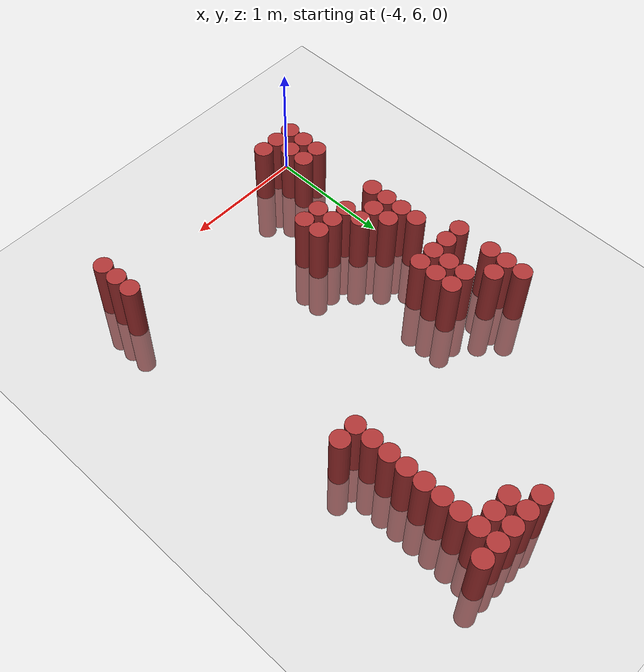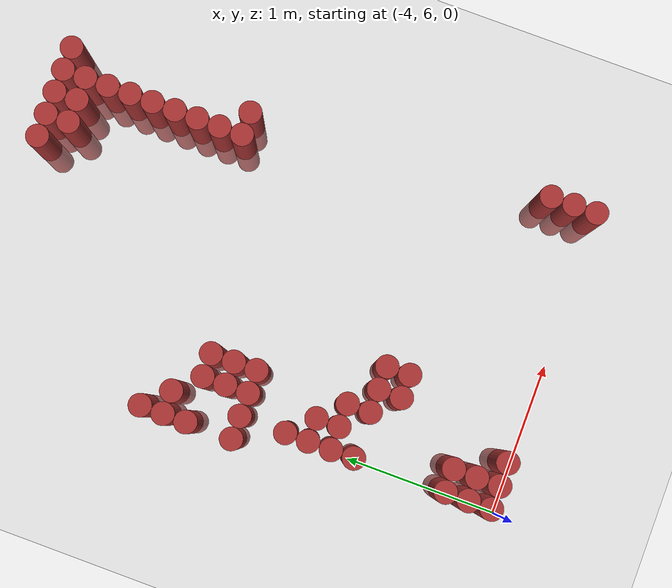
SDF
<sdf version="1.6">
 <world name="default">
  <model name="ground_plane">
   <static>1</static>
   <link name="link">
    <collision name="collision">
     <geometry><plane><normal>0 0 1</normal><size>100 100</size></plane></geometry>
     <surface><friction><ode><mu>100</mu><mu2>50</mu2></ode></friction></surface>
    </collision>
    <visual name="visual">
     <cast_shadows>0</cast_shadows>
     <geometry><plane><normal>0 0 1</normal><size>100 100</size></plane></geometry>
     <material>
      <script><uri>file://media/materials/scripts/gazebo.material</uri><name>Gazebo/Grey</name></script>
     </material>
    </visual>
   </link>
  </model>
  <model name="unit_cylinder_267">
   <static>1</static>
   <pose>-4.125000 7.725000 0.000000 0.000000 0.000000 0.000000</pose>
   <link name="link">
    <inertial>
     <mass>1</mass>
     <inertia><ixx>0.145833</ixx><ixy>0</ixy><ixz>0</ixz><iyy>0.145833</iyy><iyz>0</iyz><izz>0.125</izz></inertia>
    </inertial>
    <collision name="collision">
     <geometry><cylinder><radius>0.075000</radius><length>1</length></cylinder></geometry>
    </collision>
    <visual name="visual">
     <geometry><cylinder><radius>0.075000</radius><length>1</length></cylinder></geometry>
     <material>
      <ambient>0.648000 0.192000 0.192000 1</ambient>
      <diffuse>0.648000 0.192000 0.192000 1</diffuse>
     </material>
     <material>
      <script><name>Gazebo/Grey</name><uri>file://media/materials/scripts/gazebo.material</uri></script>
     </material>
    </visual>
   </link>
  </model>
  <model name="unit_cylinder_268">
   <static>1</static>
   <pose>-4.125000 8.025000 0.000000 0.000000 0.000000 0.000000</pose>
   <link name="link">
    <inertial>
     <mass>1</mass>
     <inertia><ixx>0.145833</ixx><ixy>0</ixy><ixz>0</ixz><iyy>0.145833</iyy><iyz>0</iyz><izz>0.125</izz></inertia>
    </inertial>
    <collision name="collision">
     <geometry><cylinder><radius>0.075000</radius><length>1</length></cylinder></geometry>
    </collision>
    <visual name="visual">
     <geometry><cylinder><radius>0.075000</radius><length>1</length></cylinder></geometry>
     <material>
      <ambient>0.648000 0.192000 0.192000 1</ambient>
      <diffuse>0.648000 0.192000 0.192000 1</diffuse>
     </material>
     <material>
      <script><name>Gazebo/Grey</name><uri>file://media/materials/scripts/gazebo.material</uri></script>
     </material>
    </visual>
   </link>
  </model>
  <model name="unit_cylinder_269">
   <static>1</static>
   <pose>-4.125000 8.175000 0.000000 0.000000 0.000000 0.000000</pose>
   <link name="link">
    <inertial>
     <mass>1</mass>
     <inertia><ixx>0.145833</ixx><ixy>0</ixy><ixz>0</ixz><iyy>0.145833</iyy><iyz>0</iyz><izz>0.125</izz></inertia>
    </inertial>
    <collision name="collision">
     <geometry><cylinder><radius>0.075000</radius><length>1</length></cylinder></geometry>
    </collision>
    <visual name="visual">
     <geometry><cylinder><radius>0.075000</radius><length>1</length></cylinder></geometry>
     <material>
      <ambient>0.648000 0.192000 0.192000 1</ambient>
      <diffuse>0.648000 0.192000 0.192000 1</diffuse>
     </material>
     <material>
      <script><name>Gazebo/Grey</name><uri>file://media/materials/scripts/gazebo.material</uri></script>
     </material>
    </visual>
   </link>
  </model>
  <model name="unit_cylinder_270">
   <static>1</static>
   <pose>-4.125000 8.325000 0.000000 0.000000 0.000000 0.000000</pose>
   <link name="link">
    <inertial>
     <mass>1</mass>
     <inertia><ixx>0.145833</ixx><ixy>0</ixy><ixz>0</ixz><iyy>0.145833</iyy><iyz>0</iyz><izz>0.125</izz></inertia>
    </inertial>
    <collision name="collision">
     <geometry><cylinder><radius>0.075000</radius><length>1</length></cylinder></geometry>
    </collision>
    <visual name="visual">
     <geometry><cylinder><radius>0.075000</radius><length>1</length></cylinder></geometry>
     <material>
      <ambient>0.648000 0.192000 0.192000 1</ambient>
      <diffuse>0.648000 0.192000 0.192000 1</diffuse>
     </material>
     <material>
      <script><name>Gazebo/Grey</name><uri>file://media/materials/scripts/gazebo.material</uri></script>
     </material>
    </visual>
   </link>
  </model>
  <model name="unit_cylinder_275">
   <static>1</static>
   <pose>-3.975000 6.075000 0.000000 0.000000 0.000000 0.000000</pose>
   <link name="link">
    <inertial>
     <mass>1</mass>
     <inertia><ixx>0.145833</ixx><ixy>0</ixy><ixz>0</ixz><iyy>0.145833</iyy><iyz>0</iyz><izz>0.125</izz></inertia>
    </inertial>
    <collision name="collision">
     <geometry><cylinder><radius>0.075000</radius><length>1</length></cylinder></geometry>
    </collision>
    <visual name="visual">
     <geometry><cylinder><radius>0.075000</radius><length>1</length></cylinder></geometry>
     <material>
      <ambient>0.648000 0.192000 0.192000 1</ambient>
      <diffuse>0.648000 0.192000 0.192000 1</diffuse>
     </material>
     <material>
      <script><name>Gazebo/Grey</name><uri>file://media/materials/scripts/gazebo.material</uri></script>
     </material>
    </visual>
   </link>
  </model>
  <model name="unit_cylinder_276">
   <static>1</static>
   <pose>-3.975000 6.225000 0.000000 0.000000 0.000000 0.000000</pose>
   <link name="link">
    <inertial>
     <mass>1</mass>
     <inertia><ixx>0.145833</ixx><ixy>0</ixy><ixz>0</ixz><iyy>0.145833</iyy><iyz>0</iyz><izz>0.125</izz></inertia>
    </inertial>
    <collision name="collision">
     <geometry><cylinder><radius>0.075000</radius><length>1</length></cylinder></geometry>
    </collision>
    <visual name="visual">
     <geometry><cylinder><radius>0.075000</radius><length>1</length></cylinder></geometry>
     <material>
      <ambient>0.648000 0.192000 0.192000 1</ambient>
      <diffuse>0.648000 0.192000 0.192000 1</diffuse>
     </material>
     <material>
      <script><name>Gazebo/Grey</name><uri>file://media/materials/scripts/gazebo.material</uri></script>
     </material>
    </visual>
   </link>
  </model>
  <model name="unit_cylinder_277">
   <static>1</static>
   <pose>-3.975000 6.375000 0.000000 0.000000 0.000000 0.000000</pose>
   <link name="link">
    <inertial>
     <mass>1</mass>
     <inertia><ixx>0.145833</ixx><ixy>0</ixy><ixz>0</ixz><iyy>0.145833</iyy><iyz>0</iyz><izz>0.125</izz></inertia>
    </inertial>
    <collision name="collision">
     <geometry><cylinder><radius>0.075000</radius><length>1</length></cylinder></geometry>
    </collision>
    <visual name="visual">
     <geometry><cylinder><radius>0.075000</radius><length>1</length></cylinder></geometry>
     <material>
      <ambient>0.648000 0.192000 0.192000 1</ambient>
      <diffuse>0.648000 0.192000 0.192000 1</diffuse>
     </material>
     <material>
      <script><name>Gazebo/Grey</name><uri>file://media/materials/scripts/gazebo.material</uri></script>
     </material>
    </visual>
   </link>
  </model>
  <model name="unit_cylinder_278">
   <static>1</static>
   <pose>-3.975000 6.975000 0.000000 0.000000 0.000000 0.000000</pose>
   <link name="link">
    <inertial>
     <mass>1</mass>
     <inertia><ixx>0.145833</ixx><ixy>0</ixy><ixz>0</ixz><iyy>0.145833</iyy><iyz>0</iyz><izz>0.125</izz></inertia>
    </inertial>
    <collision name="collision">
     <geometry><cylinder><radius>0.075000</radius><length>1</length></cylinder></geometry>
    </collision>
    <visual name="visual">
     <geometry><cylinder><radius>0.075000</radius><length>1</length></cylinder></geometry>
     <material>
      <ambient>0.648000 0.192000 0.192000 1</ambient>
      <diffuse>0.648000 0.192000 0.192000 1</diffuse>
     </material>
     <material>
      <script><name>Gazebo/Grey</name><uri>file://media/materials/scripts/gazebo.material</uri></script>
     </material>
    </visual>
   </link>
  </model>
  <model name="unit_cylinder_279">
   <static>1</static>
   <pose>-3.975000 7.125000 0.000000 0.000000 0.000000 0.000000</pose>
   <link name="link">
    <inertial>
     <mass>1</mass>
     <inertia><ixx>0.145833</ixx><ixy>0</ixy><ixz>0</ixz><iyy>0.145833</iyy><iyz>0</iyz><izz>0.125</izz></inertia>
    </inertial>
    <collision name="collision">
     <geometry><cylinder><radius>0.075000</radius><length>1</length></cylinder></geometry>
    </collision>
    <visual name="visual">
     <geometry><cylinder><radius>0.075000</radius><length>1</length></cylinder></geometry>
     <material>
      <ambient>0.648000 0.192000 0.192000 1</ambient>
      <diffuse>0.648000 0.192000 0.192000 1</diffuse>
     </material>
     <material>
      <script><name>Gazebo/Grey</name><uri>file://media/materials/scripts/gazebo.material</uri></script>
     </material>
    </visual>
   </link>
  </model>
  <model name="unit_cylinder_280">
   <static>1</static>
   <pose>-3.975000 7.275000 0.000000 0.000000 0.000000 0.000000</pose>
   <link name="link">
    <inertial>
     <mass>1</mass>
     <inertia><ixx>0.145833</ixx><ixy>0</ixy><ixz>0</ixz><iyy>0.145833</iyy><iyz>0</iyz><izz>0.125</izz></inertia>
    </inertial>
    <collision name="collision">
     <geometry><cylinder><radius>0.075000</radius><length>1</length></cylinder></geometry>
    </collision>
    <visual name="visual">
     <geometry><cylinder><radius>0.075000</radius><length>1</length></cylinder></geometry>
     <material>
      <ambient>0.648000 0.192000 0.192000 1</ambient>
      <diffuse>0.648000 0.192000 0.192000 1</diffuse>
     </material>
     <material>
      <script><name>Gazebo/Grey</name><uri>file://media/materials/scripts/gazebo.material</uri></script>
     </material>
    </visual>
   </link>
  </model>
  <model name="unit_cylinder_281">
   <static>1</static>
   <pose>-3.975000 7.425000 0.000000 0.000000 0.000000 0.000000</pose>
   <link name="link">
    <inertial>
     <mass>1</mass>
     <inertia><ixx>0.145833</ixx><ixy>0</ixy><ixz>0</ixz><iyy>0.145833</iyy><iyz>0</iyz><izz>0.125</izz></inertia>
    </inertial>
    <collision name="collision">
     <geometry><cylinder><radius>0.075000</radius><length>1</length></cylinder></geometry>
    </collision>
    <visual name="visual">
     <geometry><cylinder><radius>0.075000</radius><length>1</length></cylinder></geometry>
     <material>
      <ambient>0.648000 0.192000 0.192000 1</ambient>
      <diffuse>0.648000 0.192000 0.192000 1</diffuse>
     </material>
     <material>
      <script><name>Gazebo/Grey</name><uri>file://media/materials/scripts/gazebo.material</uri></script>
     </material>
    </visual>
   </link>
  </model>
  <model name="unit_cylinder_282">
   <static>1</static>
   <pose>-3.975000 7.725000 0.000000 0.000000 0.000000 0.000000</pose>
   <link name="link">
    <inertial>
     <mass>1</mass>
     <inertia><ixx>0.145833</ixx><ixy>0</ixy><ixz>0</ixz><iyy>0.145833</iyy><iyz>0</iyz><izz>0.125</izz></inertia>
    </inertial>
    <collision name="collision">
     <geometry><cylinder><radius>0.075000</radius><length>1</length></cylinder></geometry>
    </collision>
    <visual name="visual">
     <geometry><cylinder><radius>0.075000</radius><length>1</length></cylinder></geometry>
     <material>
      <ambient>0.648000 0.192000 0.192000 1</ambient>
      <diffuse>0.648000 0.192000 0.192000 1</diffuse>
     </material>
     <material>
      <script><name>Gazebo/Grey</name><uri>file://media/materials/scripts/gazebo.material</uri></script>
     </material>
    </visual>
   </link>
  </model>
  <model name="unit_cylinder_283">
   <static>1</static>
   <pose>-3.975000 8.175000 0.000000 0.000000 0.000000 0.000000</pose>
   <link name="link">
    <inertial>
     <mass>1</mass>
     <inertia><ixx>0.145833</ixx><ixy>0</ixy><ixz>0</ixz><iyy>0.145833</iyy><iyz>0</iyz><izz>0.125</izz></inertia>
    </inertial>
    <collision name="collision">
     <geometry><cylinder><radius>0.075000</radius><length>1</length></cylinder></geometry>
    </collision>
    <visual name="visual">
     <geometry><cylinder><radius>0.075000</radius><length>1</length></cylinder></geometry>
     <material>
      <ambient>0.648000 0.192000 0.192000 1</ambient>
      <diffuse>0.648000 0.192000 0.192000 1</diffuse>
     </material>
     <material>
      <script><name>Gazebo/Grey</name><uri>file://media/materials/scripts/gazebo.material</uri></script>
     </material>
    </visual>
   </link>
  </model>
  <model name="unit_cylinder_285">
   <static>1</static>
   <pose>-3.825000 6.075000 0.000000 0.000000 0.000000 0.000000</pose>
   <link name="link">
    <inertial>
     <mass>1</mass>
     <inertia><ixx>0.145833</ixx><ixy>0</ixy><ixz>0</ixz><iyy>0.145833</iyy><iyz>0</iyz><izz>0.125</izz></inertia>
    </inertial>
    <collision name="collision">
     <geometry><cylinder><radius>0.075000</radius><length>1</length></cylinder></geometry>
    </collision>
    <visual name="visual">
     <geometry><cylinder><radius>0.075000</radius><length>1</length></cylinder></geometry>
     <material>
      <ambient>0.648000 0.192000 0.192000 1</ambient>
      <diffuse>0.648000 0.192000 0.192000 1</diffuse>
     </material>
     <material>
      <script><name>Gazebo/Grey</name><uri>file://media/materials/scripts/gazebo.material</uri></script>
     </material>
    </visual>
   </link>
  </model>
  <model name="unit_cylinder_286">
   <static>1</static>
   <pose>-3.825000 6.225000 0.000000 0.000000 0.000000 0.000000</pose>
   <link name="link">
    <inertial>
     <mass>1</mass>
     <inertia><ixx>0.145833</ixx><ixy>0</ixy><ixz>0</ixz><iyy>0.145833</iyy><iyz>0</iyz><izz>0.125</izz></inertia>
    </inertial>
    <collision name="collision">
     <geometry><cylinder><radius>0.075000</radius><length>1</length></cylinder></geometry>
    </collision>
    <visual name="visual">
     <geometry><cylinder><radius>0.075000</radius><length>1</length></cylinder></geometry>
     <material>
      <ambient>0.648000 0.192000 0.192000 1</ambient>
      <diffuse>0.648000 0.192000 0.192000 1</diffuse>
     </material>
     <material>
      <script><name>Gazebo/Grey</name><uri>file://media/materials/scripts/gazebo.material</uri></script>
     </material>
    </visual>
   </link>
  </model>
  <model name="unit_cylinder_287">
   <static>1</static>
   <pose>-3.825000 6.375000 0.000000 0.000000 0.000000 0.000000</pose>
   <link name="link">
    <inertial>
     <mass>1</mass>
     <inertia><ixx>0.145833</ixx><ixy>0</ixy><ixz>0</ixz><iyy>0.145833</iyy><iyz>0</iyz><izz>0.125</izz></inertia>
    </inertial>
    <collision name="collision">
     <geometry><cylinder><radius>0.075000</radius><length>1</length></cylinder></geometry>
    </collision>
    <visual name="visual">
     <geometry><cylinder><radius>0.075000</radius><length>1</length></cylinder></geometry>
     <material>
      <ambient>0.648000 0.192000 0.192000 1</ambient>
      <diffuse>0.648000 0.192000 0.192000 1</diffuse>
     </material>
     <material>
      <script><name>Gazebo/Grey</name><uri>file://media/materials/scripts/gazebo.material</uri></script>
     </material>
    </visual>
   </link>
  </model>
  <model name="unit_cylinder_288">
   <static>1</static>
   <pose>-3.825000 7.125000 0.000000 0.000000 0.000000 0.000000</pose>
   <link name="link">
    <inertial>
     <mass>1</mass>
     <inertia><ixx>0.145833</ixx><ixy>0</ixy><ixz>0</ixz><iyy>0.145833</iyy><iyz>0</iyz><izz>0.125</izz></inertia>
    </inertial>
    <collision name="collision">
     <geometry><cylinder><radius>0.075000</radius><length>1</length></cylinder></geometry>
    </collision>
    <visual name="visual">
     <geometry><cylinder><radius>0.075000</radius><length>1</length></cylinder></geometry>
     <material>
      <ambient>0.648000 0.192000 0.192000 1</ambient>
      <diffuse>0.648000 0.192000 0.192000 1</diffuse>
     </material>
     <material>
      <script><name>Gazebo/Grey</name><uri>file://media/materials/scripts/gazebo.material</uri></script>
     </material>
    </visual>
   </link>
  </model>
  <model name="unit_cylinder_289">
   <static>1</static>
   <pose>-3.825000 7.275000 0.000000 0.000000 0.000000 0.000000</pose>
   <link name="link">
    <inertial>
     <mass>1</mass>
     <inertia><ixx>0.145833</ixx><ixy>0</ixy><ixz>0</ixz><iyy>0.145833</iyy><iyz>0</iyz><izz>0.125</izz></inertia>
    </inertial>
    <collision name="collision">
     <geometry><cylinder><radius>0.075000</radius><length>1</length></cylinder></geometry>
    </collision>
    <visual name="visual">
     <geometry><cylinder><radius>0.075000</radius><length>1</length></cylinder></geometry>
     <material>
      <ambient>0.648000 0.192000 0.192000 1</ambient>
      <diffuse>0.648000 0.192000 0.192000 1</diffuse>
     </material>
     <material>
      <script><name>Gazebo/Grey</name><uri>file://media/materials/scripts/gazebo.material</uri></script>
     </material>
    </visual>
   </link>
  </model>
  <model name="unit_cylinder_290">
   <static>1</static>
   <pose>-3.825000 7.725000 0.000000 0.000000 0.000000 0.000000</pose>
   <link name="link">
    <inertial>
     <mass>1</mass>
     <inertia><ixx>0.145833</ixx><ixy>0</ixy><ixz>0</ixz><iyy>0.145833</iyy><iyz>0</iyz><izz>0.125</izz></inertia>
    </inertial>
    <collision name="collision">
     <geometry><cylinder><radius>0.075000</radius><length>1</length></cylinder></geometry>
    </collision>
    <visual name="visual">
     <geometry><cylinder><radius>0.075000</radius><length>1</length></cylinder></geometry>
     <material>
      <ambient>0.648000 0.192000 0.192000 1</ambient>
      <diffuse>0.648000 0.192000 0.192000 1</diffuse>
     </material>
     <material>
      <script><name>Gazebo/Grey</name><uri>file://media/materials/scripts/gazebo.material</uri></script>
     </material>
    </visual>
   </link>
  </model>
  <model name="unit_cylinder_291">
   <static>1</static>
   <pose>-3.825000 7.875000 0.000000 0.000000 0.000000 0.000000</pose>
   <link name="link">
    <inertial>
     <mass>1</mass>
     <inertia><ixx>0.145833</ixx><ixy>0</ixy><ixz>0</ixz><iyy>0.145833</iyy><iyz>0</iyz><izz>0.125</izz></inertia>
    </inertial>
    <collision name="collision">
     <geometry><cylinder><radius>0.075000</radius><length>1</length></cylinder></geometry>
    </collision>
    <visual name="visual">
     <geometry><cylinder><radius>0.075000</radius><length>1</length></cylinder></geometry>
     <material>
      <ambient>0.648000 0.192000 0.192000 1</ambient>
      <diffuse>0.648000 0.192000 0.192000 1</diffuse>
     </material>
     <material>
      <script><name>Gazebo/Grey</name><uri>file://media/materials/scripts/gazebo.material</uri></script>
     </material>
    </visual>
   </link>
  </model>
  <model name="unit_cylinder_292">
   <static>1</static>
   <pose>-3.825000 8.025000 0.000000 0.000000 0.000000 0.000000</pose>
   <link name="link">
    <inertial>
     <mass>1</mass>
     <inertia><ixx>0.145833</ixx><ixy>0</ixy><ixz>0</ixz><iyy>0.145833</iyy><iyz>0</iyz><izz>0.125</izz></inertia>
    </inertial>
    <collision name="collision">
     <geometry><cylinder><radius>0.075000</radius><length>1</length></cylinder></geometry>
    </collision>
    <visual name="visual">
     <geometry><cylinder><radius>0.075000</radius><length>1</length></cylinder></geometry>
     <material>
      <ambient>0.648000 0.192000 0.192000 1</ambient>
      <diffuse>0.648000 0.192000 0.192000 1</diffuse>
     </material>
     <material>
      <script><name>Gazebo/Grey</name><uri>file://media/materials/scripts/gazebo.material</uri></script>
     </material>
    </visual>
   </link>
  </model>
  <model name="unit_cylinder_294">
   <static>1</static>
   <pose>-3.675000 6.075000 0.000000 0.000000 0.000000 0.000000</pose>
   <link name="link">
    <inertial>
     <mass>1</mass>
     <inertia><ixx>0.145833</ixx><ixy>0</ixy><ixz>0</ixz><iyy>0.145833</iyy><iyz>0</iyz><izz>0.125</izz></inertia>
    </inertial>
    <collision name="collision">
     <geometry><cylinder><radius>0.075000</radius><length>1</length></cylinder></geometry>
    </collision>
    <visual name="visual">
     <geometry><cylinder><radius>0.075000</radius><length>1</length></cylinder></geometry>
     <material>
      <ambient>0.648000 0.192000 0.192000 1</ambient>
      <diffuse>0.648000 0.192000 0.192000 1</diffuse>
     </material>
     <material>
      <script><name>Gazebo/Grey</name><uri>file://media/materials/scripts/gazebo.material</uri></script>
     </material>
    </visual>
   </link>
  </model>
  <model name="unit_cylinder_295">
   <static>1</static>
   <pose>-3.675000 6.975000 0.000000 0.000000 0.000000 0.000000</pose>
   <link name="link">
    <inertial>
     <mass>1</mass>
     <inertia><ixx>0.145833</ixx><ixy>0</ixy><ixz>0</ixz><iyy>0.145833</iyy><iyz>0</iyz><izz>0.125</izz></inertia>
    </inertial>
    <collision name="collision">
     <geometry><cylinder><radius>0.075000</radius><length>1</length></cylinder></geometry>
    </collision>
    <visual name="visual">
     <geometry><cylinder><radius>0.075000</radius><length>1</length></cylinder></geometry>
     <material>
      <ambient>0.648000 0.192000 0.192000 1</ambient>
      <diffuse>0.648000 0.192000 0.192000 1</diffuse>
     </material>
     <material>
      <script><name>Gazebo/Grey</name><uri>file://media/materials/scripts/gazebo.material</uri></script>
     </material>
    </visual>
   </link>
  </model>
  <model name="unit_cylinder_296">
   <static>1</static>
   <pose>-3.675000 7.125000 0.000000 0.000000 0.000000 0.000000</pose>
   <link name="link">
    <inertial>
     <mass>1</mass>
     <inertia><ixx>0.145833</ixx><ixy>0</ixy><ixz>0</ixz><iyy>0.145833</iyy><iyz>0</iyz><izz>0.125</izz></inertia>
    </inertial>
    <collision name="collision">
     <geometry><cylinder><radius>0.075000</radius><length>1</length></cylinder></geometry>
    </collision>
    <visual name="visual">
     <geometry><cylinder><radius>0.075000</radius><length>1</length></cylinder></geometry>
     <material>
      <ambient>0.648000 0.192000 0.192000 1</ambient>
      <diffuse>0.648000 0.192000 0.192000 1</diffuse>
     </material>
     <material>
      <script><name>Gazebo/Grey</name><uri>file://media/materials/scripts/gazebo.material</uri></script>
     </material>
    </visual>
   </link>
  </model>
  <model name="unit_cylinder_297">
   <static>1</static>
   <pose>-3.675000 7.725000 0.000000 0.000000 0.000000 0.000000</pose>
   <link name="link">
    <inertial>
     <mass>1</mass>
     <inertia><ixx>0.145833</ixx><ixy>0</ixy><ixz>0</ixz><iyy>0.145833</iyy><iyz>0</iyz><izz>0.125</izz></inertia>
    </inertial>
    <collision name="collision">
     <geometry><cylinder><radius>0.075000</radius><length>1</length></cylinder></geometry>
    </collision>
    <visual name="visual">
     <geometry><cylinder><radius>0.075000</radius><length>1</length></cylinder></geometry>
     <material>
      <ambient>0.648000 0.192000 0.192000 1</ambient>
      <diffuse>0.648000 0.192000 0.192000 1</diffuse>
     </material>
     <material>
      <script><name>Gazebo/Grey</name><uri>file://media/materials/scripts/gazebo.material</uri></script>
     </material>
    </visual>
   </link>
  </model>
  <model name="unit_cylinder_298">
   <static>1</static>
   <pose>-3.675000 7.875000 0.000000 0.000000 0.000000 0.000000</pose>
   <link name="link">
    <inertial>
     <mass>1</mass>
     <inertia><ixx>0.145833</ixx><ixy>0</ixy><ixz>0</ixz><iyy>0.145833</iyy><iyz>0</iyz><izz>0.125</izz></inertia>
    </inertial>
    <collision name="collision">
     <geometry><cylinder><radius>0.075000</radius><length>1</length></cylinder></geometry>
    </collision>
    <visual name="visual">
     <geometry><cylinder><radius>0.075000</radius><length>1</length></cylinder></geometry>
     <material>
      <ambient>0.648000 0.192000 0.192000 1</ambient>
      <diffuse>0.648000 0.192000 0.192000 1</diffuse>
     </material>
     <material>
      <script><name>Gazebo/Grey</name><uri>file://media/materials/scripts/gazebo.material</uri></script>
     </material>
    </visual>
   </link>
  </model>
  <model name="unit_cylinder_299">
   <static>1</static>
   <pose>-3.675000 8.025000 0.000000 0.000000 0.000000 0.000000</pose>
   <link name="link">
    <inertial>
     <mass>1</mass>
     <inertia><ixx>0.145833</ixx><ixy>0</ixy><ixz>0</ixz><iyy>0.145833</iyy><iyz>0</iyz><izz>0.125</izz></inertia>
    </inertial>
    <collision name="collision">
     <geometry><cylinder><radius>0.075000</radius><length>1</length></cylinder></geometry>
    </collision>
    <visual name="visual">
     <geometry><cylinder><radius>0.075000</radius><length>1</length></cylinder></geometry>
     <material>
      <ambient>0.648000 0.192000 0.192000 1</ambient>
      <diffuse>0.648000 0.192000 0.192000 1</diffuse>
     </material>
     <material>
      <script><name>Gazebo/Grey</name><uri>file://media/materials/scripts/gazebo.material</uri></script>
     </material>
    </visual>
   </link>
  </model>
  <model name="unit_cylinder_300">
   <static>1</static>
   <pose>-3.525000 6.825000 0.000000 0.000000 0.000000 0.000000</pose>
   <link name="link">
    <inertial>
     <mass>1</mass>
     <inertia><ixx>0.145833</ixx><ixy>0</ixy><ixz>0</ixz><iyy>0.145833</iyy><iyz>0</iyz><izz>0.125</izz></inertia>
    </inertial>
    <collision name="collision">
     <geometry><cylinder><radius>0.075000</radius><length>1</length></cylinder></geometry>
    </collision>
    <visual name="visual">
     <geometry><cylinder><radius>0.075000</radius><length>1</length></cylinder></geometry>
     <material>
      <ambient>0.648000 0.192000 0.192000 1</ambient>
      <diffuse>0.648000 0.192000 0.192000 1</diffuse>
     </material>
     <material>
      <script><name>Gazebo/Grey</name><uri>file://media/materials/scripts/gazebo.material</uri></script>
     </material>
    </visual>
   </link>
  </model>
  <model name="unit_cylinder_301">
   <static>1</static>
   <pose>-3.525000 6.975000 0.000000 0.000000 0.000000 0.000000</pose>
   <link name="link">
    <inertial>
     <mass>1</mass>
     <inertia><ixx>0.145833</ixx><ixy>0</ixy><ixz>0</ixz><iyy>0.145833</iyy><iyz>0</iyz><izz>0.125</izz></inertia>
    </inertial>
    <collision name="collision">
     <geometry><cylinder><radius>0.075000</radius><length>1</length></cylinder></geometry>
    </collision>
    <visual name="visual">
     <geometry><cylinder><radius>0.075000</radius><length>1</length></cylinder></geometry>
     <material>
      <ambient>0.648000 0.192000 0.192000 1</ambient>
      <diffuse>0.648000 0.192000 0.192000 1</diffuse>
     </material>
     <material>
      <script><name>Gazebo/Grey</name><uri>file://media/materials/scripts/gazebo.material</uri></script>
     </material>
    </visual>
   </link>
  </model>
  <model name="unit_cylinder_302">
   <static>1</static>
   <pose>-3.375000 6.825000 0.000000 0.000000 0.000000 0.000000</pose>
   <link name="link">
    <inertial>
     <mass>1</mass>
     <inertia><ixx>0.145833</ixx><ixy>0</ixy><ixz>0</ixz><iyy>0.145833</iyy><iyz>0</iyz><izz>0.125</izz></inertia>
    </inertial>
    <collision name="collision">
     <geometry><cylinder><radius>0.075000</radius><length>1</length></cylinder></geometry>
    </collision>
    <visual name="visual">
     <geometry><cylinder><radius>0.075000</radius><length>1</length></cylinder></geometry>
     <material>
      <ambient>0.648000 0.192000 0.192000 1</ambient>
      <diffuse>0.648000 0.192000 0.192000 1</diffuse>
     </material>
     <material>
      <script><name>Gazebo/Grey</name><uri>file://media/materials/scripts/gazebo.material</uri></script>
     </material>
    </visual>
   </link>
  </model>
  <model name="unit_cylinder_303">
   <static>1</static>
   <pose>-3.375000 6.975000 0.000000 0.000000 0.000000 0.000000</pose>
   <link name="link">
    <inertial>
     <mass>1</mass>
     <inertia><ixx>0.145833</ixx><ixy>0</ixy><ixz>0</ixz><iyy>0.145833</iyy><iyz>0</iyz><izz>0.125</izz></inertia>
    </inertial>
    <collision name="collision">
     <geometry><cylinder><radius>0.075000</radius><length>1</length></cylinder></geometry>
    </collision>
    <visual name="visual">
     <geometry><cylinder><radius>0.075000</radius><length>1</length></cylinder></geometry>
     <material>
      <ambient>0.648000 0.192000 0.192000 1</ambient>
      <diffuse>0.648000 0.192000 0.192000 1</diffuse>
     </material>
     <material>
      <script><name>Gazebo/Grey</name><uri>file://media/materials/scripts/gazebo.material</uri></script>
     </material>
    </visual>
   </link>
  </model>
  <model name="unit_cylinder_304">
   <static>1</static>
   <pose>-2.775000 9.525000 0.000000 0.000000 0.000000 0.000000</pose>
   <link name="link">
    <inertial>
     <mass>1</mass>
     <inertia><ixx>0.145833</ixx><ixy>0</ixy><ixz>0</ixz><iyy>0.145833</iyy><iyz>0</iyz><izz>0.125</izz></inertia>
    </inertial>
    <collision name="collision">
     <geometry><cylinder><radius>0.075000</radius><length>1</length></cylinder></geometry>
    </collision>
    <visual name="visual">
     <geometry><cylinder><radius>0.075000</radius><length>1</length></cylinder></geometry>
     <material>
      <ambient>0.648000 0.192000 0.192000 1</ambient>
      <diffuse>0.648000 0.192000 0.192000 1</diffuse>
     </material>
     <material>
      <script><name>Gazebo/Grey</name><uri>file://media/materials/scripts/gazebo.material</uri></script>
     </material>
    </visual>
   </link>
  </model>
  <model name="unit_cylinder_305">
   <static>1</static>
   <pose>-2.625000 9.375000 0.000000 0.000000 0.000000 0.000000</pose>
   <link name="link">
    <inertial>
     <mass>1</mass>
     <inertia><ixx>0.145833</ixx><ixy>0</ixy><ixz>0</ixz><iyy>0.145833</iyy><iyz>0</iyz><izz>0.125</izz></inertia>
    </inertial>
    <collision name="collision">
     <geometry><cylinder><radius>0.075000</radius><length>1</length></cylinder></geometry>
    </collision>
    <visual name="visual">
     <geometry><cylinder><radius>0.075000</radius><length>1</length></cylinder></geometry>
     <material>
      <ambient>0.648000 0.192000 0.192000 1</ambient>
      <diffuse>0.648000 0.192000 0.192000 1</diffuse>
     </material>
     <material>
      <script><name>Gazebo/Grey</name><uri>file://media/materials/scripts/gazebo.material</uri></script>
     </material>
    </visual>
   </link>
  </model>
  <model name="unit_cylinder_306">
   <static>1</static>
   <pose>-2.625000 9.525000 0.000000 0.000000 0.000000 0.000000</pose>
   <link name="link">
    <inertial>
     <mass>1</mass>
     <inertia><ixx>0.145833</ixx><ixy>0</ixy><ixz>0</ixz><iyy>0.145833</iyy><iyz>0</iyz><izz>0.125</izz></inertia>
    </inertial>
    <collision name="collision">
     <geometry><cylinder><radius>0.075000</radius><length>1</length></cylinder></geometry>
    </collision>
    <visual name="visual">
     <geometry><cylinder><radius>0.075000</radius><length>1</length></cylinder></geometry>
     <material>
      <ambient>0.648000 0.192000 0.192000 1</ambient>
      <diffuse>0.648000 0.192000 0.192000 1</diffuse>
     </material>
     <material>
      <script><name>Gazebo/Grey</name><uri>file://media/materials/scripts/gazebo.material</uri></script>
     </material>
    </visual>
   </link>
  </model>
  <model name="unit_cylinder_307">
   <static>1</static>
   <pose>-2.475000 9.375000 0.000000 0.000000 0.000000 0.000000</pose>
   <link name="link">
    <inertial>
     <mass>1</mass>
     <inertia><ixx>0.145833</ixx><ixy>0</ixy><ixz>0</ixz><iyy>0.145833</iyy><iyz>0</iyz><izz>0.125</izz></inertia>
    </inertial>
    <collision name="collision">
     <geometry><cylinder><radius>0.075000</radius><length>1</length></cylinder></geometry>
    </collision>
    <visual name="visual">
     <geometry><cylinder><radius>0.075000</radius><length>1</length></cylinder></geometry>
     <material>
      <ambient>0.648000 0.192000 0.192000 1</ambient>
      <diffuse>0.648000 0.192000 0.192000 1</diffuse>
     </material>
     <material>
      <script><name>Gazebo/Grey</name><uri>file://media/materials/scripts/gazebo.material</uri></script>
     </material>
    </visual>
   </link>
  </model>
  <model name="unit_cylinder_308">
   <static>1</static>
   <pose>-2.475000 9.525000 0.000000 0.000000 0.000000 0.000000</pose>
   <link name="link">
    <inertial>
     <mass>1</mass>
     <inertia><ixx>0.145833</ixx><ixy>0</ixy><ixz>0</ixz><iyy>0.145833</iyy><iyz>0</iyz><izz>0.125</izz></inertia>
    </inertial>
    <collision name="collision">
     <geometry><cylinder><radius>0.075000</radius><length>1</length></cylinder></geometry>
    </collision>
    <visual name="visual">
     <geometry><cylinder><radius>0.075000</radius><length>1</length></cylinder></geometry>
     <material>
      <ambient>0.648000 0.192000 0.192000 1</ambient>
      <diffuse>0.648000 0.192000 0.192000 1</diffuse>
     </material>
     <material>
      <script><name>Gazebo/Grey</name><uri>file://media/materials/scripts/gazebo.material</uri></script>
     </material>
    </visual>
   </link>
  </model>
  <model name="unit_cylinder_312">
   <static>1</static>
   <pose>-2.325000 8.325000 0.000000 0.000000 0.000000 0.000000</pose>
   <link name="link">
    <inertial>
     <mass>1</mass>
     <inertia><ixx>0.145833</ixx><ixy>0</ixy><ixz>0</ixz><iyy>0.145833</iyy><iyz>0</iyz><izz>0.125</izz></inertia>
    </inertial>
    <collision name="collision">
     <geometry><cylinder><radius>0.075000</radius><length>1</length></cylinder></geometry>
    </collision>
    <visual name="visual">
     <geometry><cylinder><radius>0.075000</radius><length>1</length></cylinder></geometry>
     <material>
      <ambient>0.648000 0.192000 0.192000 1</ambient>
      <diffuse>0.648000 0.192000 0.192000 1</diffuse>
     </material>
     <material>
      <script><name>Gazebo/Grey</name><uri>file://media/materials/scripts/gazebo.material</uri></script>
     </material>
    </visual>
   </link>
  </model>
  <model name="unit_cylinder_313">
   <static>1</static>
   <pose>-2.325000 8.475000 0.000000 0.000000 0.000000 0.000000</pose>
   <link name="link">
    <inertial>
     <mass>1</mass>
     <inertia><ixx>0.145833</ixx><ixy>0</ixy><ixz>0</ixz><iyy>0.145833</iyy><iyz>0</iyz><izz>0.125</izz></inertia>
    </inertial>
    <collision name="collision">
     <geometry><cylinder><radius>0.075000</radius><length>1</length></cylinder></geometry>
    </collision>
    <visual name="visual">
     <geometry><cylinder><radius>0.075000</radius><length>1</length></cylinder></geometry>
     <material>
      <ambient>0.648000 0.192000 0.192000 1</ambient>
      <diffuse>0.648000 0.192000 0.192000 1</diffuse>
     </material>
     <material>
      <script><name>Gazebo/Grey</name><uri>file://media/materials/scripts/gazebo.material</uri></script>
     </material>
    </visual>
   </link>
  </model>
  <model name="unit_cylinder_314">
   <static>1</static>
   <pose>-2.325000 8.625000 0.000000 0.000000 0.000000 0.000000</pose>
   <link name="link">
    <inertial>
     <mass>1</mass>
     <inertia><ixx>0.145833</ixx><ixy>0</ixy><ixz>0</ixz><iyy>0.145833</iyy><iyz>0</iyz><izz>0.125</izz></inertia>
    </inertial>
    <collision name="collision">
     <geometry><cylinder><radius>0.075000</radius><length>1</length></cylinder></geometry>
    </collision>
    <visual name="visual">
     <geometry><cylinder><radius>0.075000</radius><length>1</length></cylinder></geometry>
     <material>
      <ambient>0.648000 0.192000 0.192000 1</ambient>
      <diffuse>0.648000 0.192000 0.192000 1</diffuse>
     </material>
     <material>
      <script><name>Gazebo/Grey</name><uri>file://media/materials/scripts/gazebo.material</uri></script>
     </material>
    </visual>
   </link>
  </model>
  <model name="unit_cylinder_315">
   <static>1</static>
   <pose>-2.325000 8.775000 0.000000 0.000000 0.000000 0.000000</pose>
   <link name="link">
    <inertial>
     <mass>1</mass>
     <inertia><ixx>0.145833</ixx><ixy>0</ixy><ixz>0</ixz><iyy>0.145833</iyy><iyz>0</iyz><izz>0.125</izz></inertia>
    </inertial>
    <collision name="collision">
     <geometry><cylinder><radius>0.075000</radius><length>1</length></cylinder></geometry>
    </collision>
    <visual name="visual">
     <geometry><cylinder><radius>0.075000</radius><length>1</length></cylinder></geometry>
     <material>
      <ambient>0.648000 0.192000 0.192000 1</ambient>
      <diffuse>0.648000 0.192000 0.192000 1</diffuse>
     </material>
     <material>
      <script><name>Gazebo/Grey</name><uri>file://media/materials/scripts/gazebo.material</uri></script>
     </material>
    </visual>
   </link>
  </model>
  <model name="unit_cylinder_316">
   <static>1</static>
   <pose>-2.325000 8.925000 0.000000 0.000000 0.000000 0.000000</pose>
   <link name="link">
    <inertial>
     <mass>1</mass>
     <inertia><ixx>0.145833</ixx><ixy>0</ixy><ixz>0</ixz><iyy>0.145833</iyy><iyz>0</iyz><izz>0.125</izz></inertia>
    </inertial>
    <collision name="collision">
     <geometry><cylinder><radius>0.075000</radius><length>1</length></cylinder></geometry>
    </collision>
    <visual name="visual">
     <geometry><cylinder><radius>0.075000</radius><length>1</length></cylinder></geometry>
     <material>
      <ambient>0.648000 0.192000 0.192000 1</ambient>
      <diffuse>0.648000 0.192000 0.192000 1</diffuse>
     </material>
     <material>
      <script><name>Gazebo/Grey</name><uri>file://media/materials/scripts/gazebo.material</uri></script>
     </material>
    </visual>
   </link>
  </model>
  <model name="unit_cylinder_317">
   <static>1</static>
   <pose>-2.325000 9.075000 0.000000 0.000000 0.000000 0.000000</pose>
   <link name="link">
    <inertial>
     <mass>1</mass>
     <inertia><ixx>0.145833</ixx><ixy>0</ixy><ixz>0</ixz><iyy>0.145833</iyy><iyz>0</iyz><izz>0.125</izz></inertia>
    </inertial>
    <collision name="collision">
     <geometry><cylinder><radius>0.075000</radius><length>1</length></cylinder></geometry>
    </collision>
    <visual name="visual">
     <geometry><cylinder><radius>0.075000</radius><length>1</length></cylinder></geometry>
     <material>
      <ambient>0.648000 0.192000 0.192000 1</ambient>
      <diffuse>0.648000 0.192000 0.192000 1</diffuse>
     </material>
     <material>
      <script><name>Gazebo/Grey</name><uri>file://media/materials/scripts/gazebo.material</uri></script>
     </material>
    </visual>
   </link>
  </model>
  <model name="unit_cylinder_318">
   <static>1</static>
   <pose>-2.325000 9.225000 0.000000 0.000000 0.000000 0.000000</pose>
   <link name="link">
    <inertial>
     <mass>1</mass>
     <inertia><ixx>0.145833</ixx><ixy>0</ixy><ixz>0</ixz><iyy>0.145833</iyy><iyz>0</iyz><izz>0.125</izz></inertia>
    </inertial>
    <collision name="collision">
     <geometry><cylinder><radius>0.075000</radius><length>1</length></cylinder></geometry>
    </collision>
    <visual name="visual">
     <geometry><cylinder><radius>0.075000</radius><length>1</length></cylinder></geometry>
     <material>
      <ambient>0.648000 0.192000 0.192000 1</ambient>
      <diffuse>0.648000 0.192000 0.192000 1</diffuse>
     </material>
     <material>
      <script><name>Gazebo/Grey</name><uri>file://media/materials/scripts/gazebo.material</uri></script>
     </material>
    </visual>
   </link>
  </model>
  <model name="unit_cylinder_319">
   <static>1</static>
   <pose>-2.325000 9.375000 0.000000 0.000000 0.000000 0.000000</pose>
   <link name="link">
    <inertial>
     <mass>1</mass>
     <inertia><ixx>0.145833</ixx><ixy>0</ixy><ixz>0</ixz><iyy>0.145833</iyy><iyz>0</iyz><izz>0.125</izz></inertia>
    </inertial>
    <collision name="collision">
     <geometry><cylinder><radius>0.075000</radius><length>1</length></cylinder></geometry>
    </collision>
    <visual name="visual">
     <geometry><cylinder><radius>0.075000</radius><length>1</length></cylinder></geometry>
     <material>
      <ambient>0.648000 0.192000 0.192000 1</ambient>
      <diffuse>0.648000 0.192000 0.192000 1</diffuse>
     </material>
     <material>
      <script><name>Gazebo/Grey</name><uri>file://media/materials/scripts/gazebo.material</uri></script>
     </material>
    </visual>
   </link>
  </model>
  <model name="unit_cylinder_320">
   <static>1</static>
   <pose>-2.325000 9.525000 0.000000 0.000000 0.000000 0.000000</pose>
   <link name="link">
    <inertial>
     <mass>1</mass>
     <inertia><ixx>0.145833</ixx><ixy>0</ixy><ixz>0</ixz><iyy>0.145833</iyy><iyz>0</iyz><izz>0.125</izz></inertia>
    </inertial>
    <collision name="collision">
     <geometry><cylinder><radius>0.075000</radius><length>1</length></cylinder></geometry>
    </collision>
    <visual name="visual">
     <geometry><cylinder><radius>0.075000</radius><length>1</length></cylinder></geometry>
     <material>
      <ambient>0.648000 0.192000 0.192000 1</ambient>
      <diffuse>0.648000 0.192000 0.192000 1</diffuse>
     </material>
     <material>
      <script><name>Gazebo/Grey</name><uri>file://media/materials/scripts/gazebo.material</uri></script>
     </material>
    </visual>
   </link>
  </model>
  <model name="unit_cylinder_323">
   <static>1</static>
   <pose>-2.175000 8.325000 0.000000 0.000000 0.000000 0.000000</pose>
   <link name="link">
    <inertial>
     <mass>1</mass>
     <inertia><ixx>0.145833</ixx><ixy>0</ixy><ixz>0</ixz><iyy>0.145833</iyy><iyz>0</iyz><izz>0.125</izz></inertia>
    </inertial>
    <collision name="collision">
     <geometry><cylinder><radius>0.075000</radius><length>1</length></cylinder></geometry>
    </collision>
    <visual name="visual">
     <geometry><cylinder><radius>0.075000</radius><length>1</length></cylinder></geometry>
     <material>
      <ambient>0.648000 0.192000 0.192000 1</ambient>
      <diffuse>0.648000 0.192000 0.192000 1</diffuse>
     </material>
     <material>
      <script><name>Gazebo/Grey</name><uri>file://media/materials/scripts/gazebo.material</uri></script>
     </material>
    </visual>
   </link>
  </model>
  <model name="unit_cylinder_324">
   <static>1</static>
   <pose>-2.175000 9.525000 0.000000 0.000000 0.000000 0.000000</pose>
   <link name="link">
    <inertial>
     <mass>1</mass>
     <inertia><ixx>0.145833</ixx><ixy>0</ixy><ixz>0</ixz><iyy>0.145833</iyy><iyz>0</iyz><izz>0.125</izz></inertia>
    </inertial>
    <collision name="collision">
     <geometry><cylinder><radius>0.075000</radius><length>1</length></cylinder></geometry>
    </collision>
    <visual name="visual">
     <geometry><cylinder><radius>0.075000</radius><length>1</length></cylinder></geometry>
     <material>
      <ambient>0.648000 0.192000 0.192000 1</ambient>
      <diffuse>0.648000 0.192000 0.192000 1</diffuse>
     </material>
     <material>
      <script><name>Gazebo/Grey</name><uri>file://media/materials/scripts/gazebo.material</uri></script>
     </material>
    </visual>
   </link>
  </model>
  <model name="unit_cylinder_330">
   <static>1</static>
   <pose>-2.025000 6.075000 0.000000 0.000000 0.000000 0.000000</pose>
   <link name="link">
    <inertial>
     <mass>1</mass>
     <inertia><ixx>0.145833</ixx><ixy>0</ixy><ixz>0</ixz><iyy>0.145833</iyy><iyz>0</iyz><izz>0.125</izz></inertia>
    </inertial>
    <collision name="collision">
     <geometry><cylinder><radius>0.075000</radius><length>1</length></cylinder></geometry>
    </collision>
    <visual name="visual">
     <geometry><cylinder><radius>0.075000</radius><length>1</length></cylinder></geometry>
     <material>
      <ambient>0.648000 0.192000 0.192000 1</ambient>
      <diffuse>0.648000 0.192000 0.192000 1</diffuse>
     </material>
     <material>
      <script><name>Gazebo/Grey</name><uri>file://media/materials/scripts/gazebo.material</uri></script>
     </material>
    </visual>
   </link>
  </model>
  <model name="unit_cylinder_331">
   <static>1</static>
   <pose>-2.025000 6.225000 0.000000 0.000000 0.000000 0.000000</pose>
   <link name="link">
    <inertial>
     <mass>1</mass>
     <inertia><ixx>0.145833</ixx><ixy>0</ixy><ixz>0</ixz><iyy>0.145833</iyy><iyz>0</iyz><izz>0.125</izz></inertia>
    </inertial>
    <collision name="collision">
     <geometry><cylinder><radius>0.075000</radius><length>1</length></cylinder></geometry>
    </collision>
    <visual name="visual">
     <geometry><cylinder><radius>0.075000</radius><length>1</length></cylinder></geometry>
     <material>
      <ambient>0.648000 0.192000 0.192000 1</ambient>
      <diffuse>0.648000 0.192000 0.192000 1</diffuse>
     </material>
     <material>
      <script><name>Gazebo/Grey</name><uri>file://media/materials/scripts/gazebo.material</uri></script>
     </material>
    </visual>
   </link>
  </model>
  <model name="unit_cylinder_332">
   <static>1</static>
   <pose>-2.025000 6.375000 0.000000 0.000000 0.000000 0.000000</pose>
   <link name="link">
    <inertial>
     <mass>1</mass>
     <inertia><ixx>0.145833</ixx><ixy>0</ixy><ixz>0</ixz><iyy>0.145833</iyy><iyz>0</iyz><izz>0.125</izz></inertia>
    </inertial>
    <collision name="collision">
     <geometry><cylinder><radius>0.075000</radius><length>1</length></cylinder></geometry>
    </collision>
    <visual name="visual">
     <geometry><cylinder><radius>0.075000</radius><length>1</length></cylinder></geometry>
     <material>
      <ambient>0.648000 0.192000 0.192000 1</ambient>
      <diffuse>0.648000 0.192000 0.192000 1</diffuse>
     </material>
     <material>
      <script><name>Gazebo/Grey</name><uri>file://media/materials/scripts/gazebo.material</uri></script>
     </material>
    </visual>
   </link>
  </model>
 </world>
</sdf>
